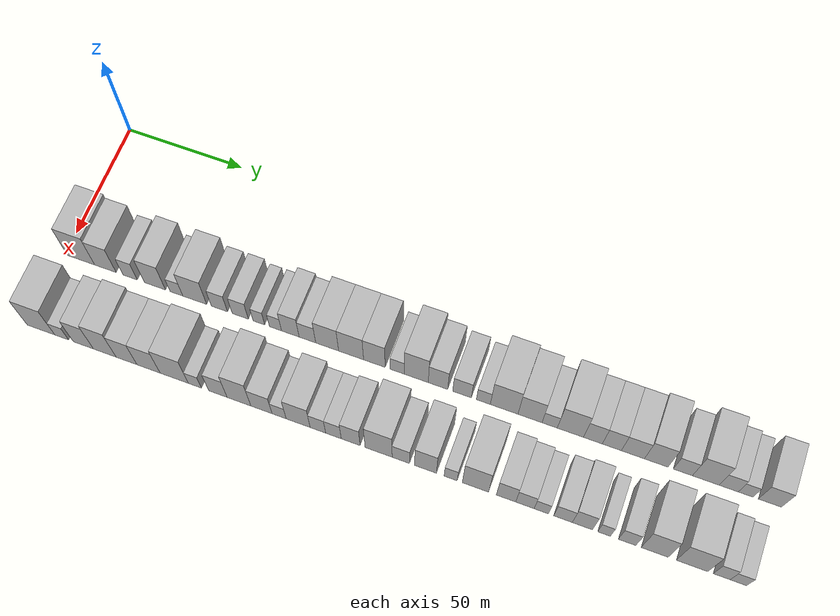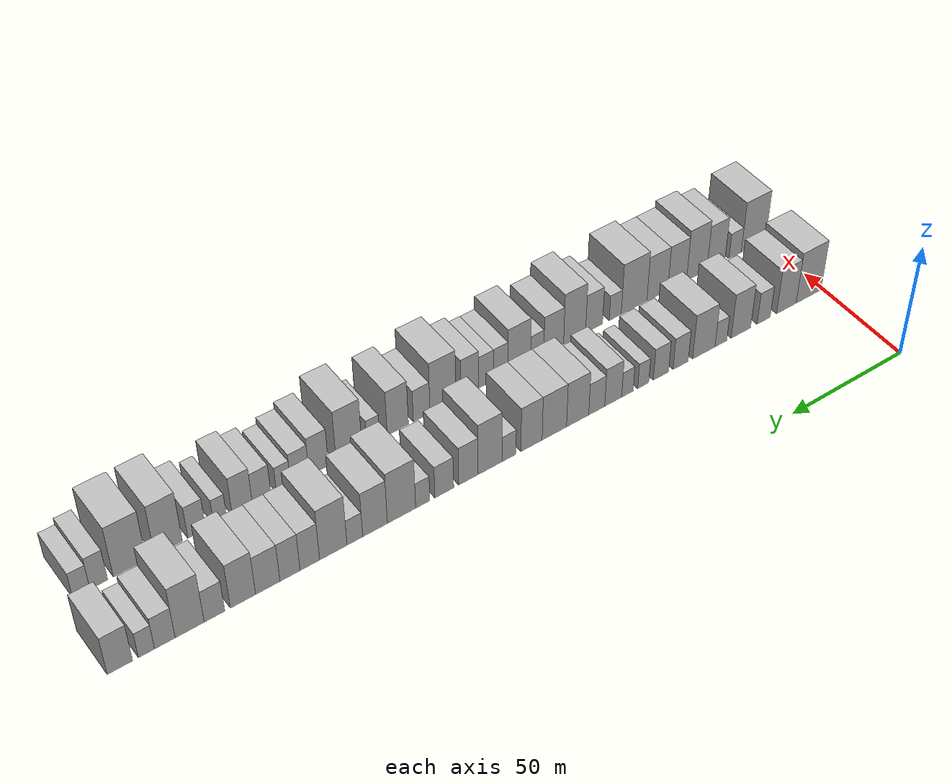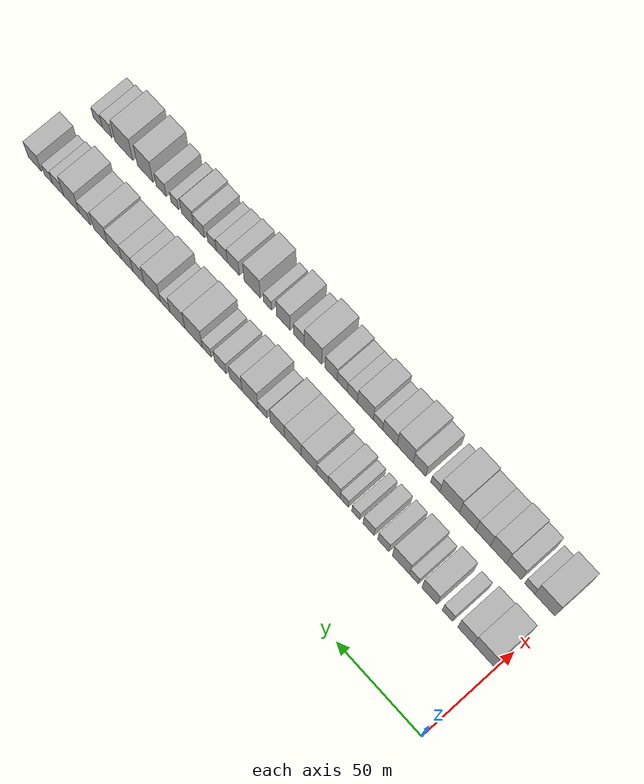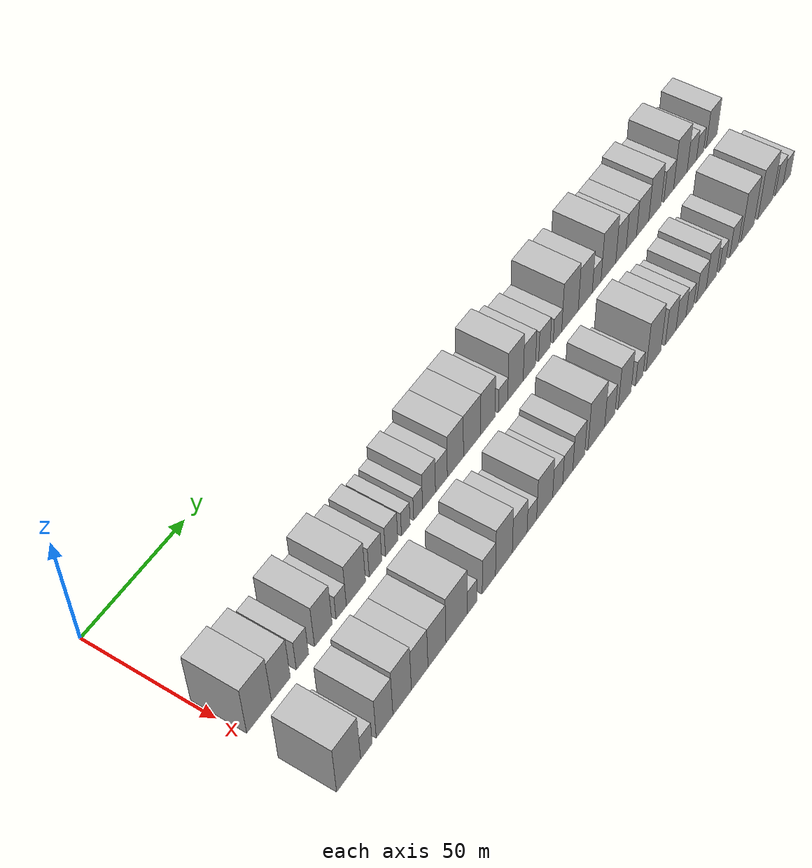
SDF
<sdf version="1.6">
 <world name="default">
  <model name="building_35">
   <static>1</static>
   <pose>50.0000 6.9286 0 0.000000 0.000000 0.000000</pose>
   <link name="link">
    <pose>0 0 12.00 0 0 0</pose>
    <collision name="collision"><geometry><box><size>20.0000 11.9607 24.0000</size></box></geometry></collision>
    <visual name="visual">
     <cast_shadows>0</cast_shadows>
     <geometry><box><size>20.0000 11.9607 24.0000</size></box></geometry>
     <material>
      <script>
       <uri>model://HANNAS_wall/materials/scripts</uri>
       <uri>model://HANNAS_wall/materials/textures</uri>
       <name>vrc/HANNAS_wall</name>
      </script>
     </material>
    </visual>
   </link>
  </model>
  <model name="building_36">
   <static>1</static>
   <pose>50.0000 17.5560 0 0.000000 0.000000 0.000000</pose>
   <link name="link">
    <pose>0 0 10.50 0 0 0</pose>
    <collision name="collision"><geometry><box><size>20.0000 9.2942 21.0000</size></box></geometry></collision>
    <visual name="visual">
     <cast_shadows>0</cast_shadows>
     <geometry><box><size>20.0000 9.2942 21.0000</size></box></geometry>
     <material>
      <script>
       <uri>model://HANNAS_wall/materials/scripts</uri>
       <uri>model://HANNAS_wall/materials/textures</uri>
       <name>vrc/HANNAS_wall</name>
      </script>
     </material>
    </visual>
   </link>
  </model>
  <model name="building_37">
   <static>1</static>
   <pose>50.0000 28.2883 0 0.000000 0.000000 0.000000</pose>
   <link name="link">
    <pose>0 0 7.50 0 0 0</pose>
    <collision name="collision"><geometry><box><size>20.0000 6.1704 15.0000</size></box></geometry></collision>
    <visual name="visual">
     <cast_shadows>0</cast_shadows>
     <geometry><box><size>20.0000 6.1704 15.0000</size></box></geometry>
     <material>
      <script>
       <uri>model://HANNAS_wall/materials/scripts</uri>
       <uri>model://HANNAS_wall/materials/textures</uri>
       <name>vrc/HANNAS_wall</name>
      </script>
     </material>
    </visual>
   </link>
  </model>
  <model name="building_38">
   <static>1</static>
   <pose>50.0000 38.9013 0 0.000000 0.000000 0.000000</pose>
   <link name="link">
    <pose>0 0 10.50 0 0 0</pose>
    <collision name="collision"><geometry><box><size>20.0000 9.0557 21.0000</size></box></geometry></collision>
    <visual name="visual">
     <cast_shadows>0</cast_shadows>
     <geometry><box><size>20.0000 9.0557 21.0000</size></box></geometry>
     <material>
      <script>
       <uri>model://HANNAS_wall/materials/scripts</uri>
       <uri>model://HANNAS_wall/materials/textures</uri>
       <name>vrc/HANNAS_wall</name>
      </script>
     </material>
    </visual>
   </link>
  </model>
  <model name="building_39">
   <static>1</static>
   <pose>50.0000 48.1322 0 0.000000 0.000000 0.000000</pose>
   <link name="link">
    <pose>0 0 6.00 0 0 0</pose>
    <collision name="collision"><geometry><box><size>20.0000 5.4062 12.0000</size></box></geometry></collision>
    <visual name="visual">
     <cast_shadows>0</cast_shadows>
     <geometry><box><size>20.0000 5.4062 12.0000</size></box></geometry>
     <material>
      <script>
       <uri>model://HANNAS_wall/materials/scripts</uri>
       <uri>model://HANNAS_wall/materials/textures</uri>
       <name>vrc/HANNAS_wall</name>
      </script>
     </material>
    </visual>
   </link>
  </model>
  <model name="building_40">
   <static>1</static>
   <pose>50.0000 55.9080 0 0.000000 0.000000 0.000000</pose>
   <link name="link">
    <pose>0 0 10.50 0 0 0</pose>
    <collision name="collision"><geometry><box><size>20.0000 10.1454 21.0000</size></box></geometry></collision>
    <visual name="visual">
     <cast_shadows>0</cast_shadows>
     <geometry><box><size>20.0000 10.1454 21.0000</size></box></geometry>
     <material>
      <script>
       <uri>model://HANNAS_wall/materials/scripts</uri>
       <uri>model://HANNAS_wall/materials/textures</uri>
       <name>vrc/HANNAS_wall</name>
      </script>
     </material>
    </visual>
   </link>
  </model>
  <model name="building_41">
   <static>1</static>
   <pose>50.0000 66.3840 0 0.000000 0.000000 0.000000</pose>
   <link name="link">
    <pose>0 0 7.50 0 0 0</pose>
    <collision name="collision"><geometry><box><size>20.0000 6.8065 15.0000</size></box></geometry></collision>
    <visual name="visual">
     <cast_shadows>0</cast_shadows>
     <geometry><box><size>20.0000 6.8065 15.0000</size></box></geometry>
     <material>
      <script>
       <uri>model://HANNAS_wall/materials/scripts</uri>
       <uri>model://HANNAS_wall/materials/textures</uri>
       <name>vrc/HANNAS_wall</name>
      </script>
     </material>
    </visual>
   </link>
  </model>
  <model name="building_42">
   <static>1</static>
   <pose>50.0000 75.1720 0 0.000000 0.000000 0.000000</pose>
   <link name="link">
    <pose>0 0 7.50 0 0 0</pose>
    <collision name="collision"><geometry><box><size>20.0000 6.7694 15.0000</size></box></geometry></collision>
    <visual name="visual">
     <cast_shadows>0</cast_shadows>
     <geometry><box><size>20.0000 6.7694 15.0000</size></box></geometry>
     <material>
      <script>
       <uri>model://HANNAS_wall/materials/scripts</uri>
       <uri>model://HANNAS_wall/materials/textures</uri>
       <name>vrc/HANNAS_wall</name>
      </script>
     </material>
    </visual>
   </link>
  </model>
  <model name="building_43">
   <static>1</static>
   <pose>50.0000 82.9790 0 0.000000 0.000000 0.000000</pose>
   <link name="link">
    <pose>0 0 6.00 0 0 0</pose>
    <collision name="collision"><geometry><box><size>20.0000 4.8446 12.0000</size></box></geometry></collision>
    <visual name="visual">
     <cast_shadows>0</cast_shadows>
     <geometry><box><size>20.0000 4.8446 12.0000</size></box></geometry>
     <material>
      <script>
       <uri>model://HANNAS_wall/materials/scripts</uri>
       <uri>model://HANNAS_wall/materials/textures</uri>
       <name>vrc/HANNAS_wall</name>
      </script>
     </material>
    </visual>
   </link>
  </model>
  <model name="building_44">
   <static>1</static>
   <pose>50.0000 89.9159 0 0.000000 0.000000 0.000000</pose>
   <link name="link">
    <pose>0 0 6.00 0 0 0</pose>
    <collision name="collision"><geometry><box><size>20.0000 5.0291 12.0000</size></box></geometry></collision>
    <visual name="visual">
     <cast_shadows>0</cast_shadows>
     <geometry><box><size>20.0000 5.0291 12.0000</size></box></geometry>
     <material>
      <script>
       <uri>model://HANNAS_wall/materials/scripts</uri>
       <uri>model://HANNAS_wall/materials/textures</uri>
       <name>vrc/HANNAS_wall</name>
      </script>
     </material>
    </visual>
   </link>
  </model>
  <model name="building_45">
   <static>1</static>
   <pose>50.0000 96.0961 0 0.000000 0.000000 0.000000</pose>
   <link name="link">
    <pose>0 0 9.00 0 0 0</pose>
    <collision name="collision"><geometry><box><size>20.0000 7.3313 18.0000</size></box></geometry></collision>
    <visual name="visual">
     <cast_shadows>0</cast_shadows>
     <geometry><box><size>20.0000 7.3313 18.0000</size></box></geometry>
     <material>
      <script>
       <uri>model://HANNAS_wall/materials/scripts</uri>
       <uri>model://HANNAS_wall/materials/textures</uri>
       <name>vrc/HANNAS_wall</name>
      </script>
     </material>
    </visual>
   </link>
  </model>
  <model name="building_46">
   <static>1</static>
   <pose>50.0000 103.1939 0 0.000000 0.000000 0.000000</pose>
   <link name="link">
    <pose>0 0 7.50 0 0 0</pose>
    <collision name="collision"><geometry><box><size>20.0000 6.8642 15.0000</size></box></geometry></collision>
    <visual name="visual">
     <cast_shadows>0</cast_shadows>
     <geometry><box><size>20.0000 6.8642 15.0000</size></box></geometry>
     <material>
      <script>
       <uri>model://HANNAS_wall/materials/scripts</uri>
       <uri>model://HANNAS_wall/materials/textures</uri>
       <name>vrc/HANNAS_wall</name>
      </script>
     </material>
    </visual>
   </link>
  </model>
  <model name="building_47">
   <static>1</static>
   <pose>50.0000 111.3410 0 0.000000 0.000000 0.000000</pose>
   <link name="link">
    <pose>0 0 10.50 0 0 0</pose>
    <collision name="collision"><geometry><box><size>20.0000 9.4302 21.0000</size></box></geometry></collision>
    <visual name="visual">
     <cast_shadows>0</cast_shadows>
     <geometry><box><size>20.0000 9.4302 21.0000</size></box></geometry>
     <material>
      <script>
       <uri>model://HANNAS_wall/materials/scripts</uri>
       <uri>model://HANNAS_wall/materials/textures</uri>
       <name>vrc/HANNAS_wall</name>
      </script>
     </material>
    </visual>
   </link>
  </model>
  <model name="building_48">
   <static>1</static>
   <pose>50.0000 121.1810 0 0.000000 0.000000 0.000000</pose>
   <link name="link">
    <pose>0 0 10.50 0 0 0</pose>
    <collision name="collision"><geometry><box><size>20.0000 10.2497 21.0000</size></box></geometry></collision>
    <visual name="visual">
     <cast_shadows>0</cast_shadows>
     <geometry><box><size>20.0000 10.2497 21.0000</size></box></geometry>
     <material>
      <script>
       <uri>model://HANNAS_wall/materials/scripts</uri>
       <uri>model://HANNAS_wall/materials/textures</uri>
       <name>vrc/HANNAS_wall</name>
      </script>
     </material>
    </visual>
   </link>
  </model>
  <model name="building_49">
   <static>1</static>
   <pose>50.0000 130.7097 0 0.000000 0.000000 0.000000</pose>
   <link name="link">
    <pose>0 0 10.50 0 0 0</pose>
    <collision name="collision"><geometry><box><size>20.0000 8.8076 21.0000</size></box></geometry></collision>
    <visual name="visual">
     <cast_shadows>0</cast_shadows>
     <geometry><box><size>20.0000 8.8076 21.0000</size></box></geometry>
     <material>
      <script>
       <uri>model://HANNAS_wall/materials/scripts</uri>
       <uri>model://HANNAS_wall/materials/textures</uri>
       <name>vrc/HANNAS_wall</name>
      </script>
     </material>
    </visual>
   </link>
  </model>
  <model name="building_50">
   <static>1</static>
   <pose>50.0000 139.9917 0 0.000000 0.000000 0.000000</pose>
   <link name="link">
    <pose>0 0 6.00 0 0 0</pose>
    <collision name="collision"><geometry><box><size>20.0000 5.7565 12.0000</size></box></geometry></collision>
    <visual name="visual">
     <cast_shadows>0</cast_shadows>
     <geometry><box><size>20.0000 5.7565 12.0000</size></box></geometry>
     <material>
      <script>
       <uri>model://HANNAS_wall/materials/scripts</uri>
       <uri>model://HANNAS_wall/materials/textures</uri>
       <name>vrc/HANNAS_wall</name>
      </script>
     </material>
    </visual>
   </link>
  </model>
  <model name="building_51">
   <static>1</static>
   <pose>50.0000 147.7186 0 0.000000 0.000000 0.000000</pose>
   <link name="link">
    <pose>0 0 12.00 0 0 0</pose>
    <collision name="collision"><geometry><box><size>20.0000 9.6972 24.0000</size></box></geometry></collision>
    <visual name="visual">
     <cast_shadows>0</cast_shadows>
     <geometry><box><size>20.0000 9.6972 24.0000</size></box></geometry>
     <material>
      <script>
       <uri>model://HANNAS_wall/materials/scripts</uri>
       <uri>model://HANNAS_wall/materials/textures</uri>
       <name>vrc/HANNAS_wall</name>
      </script>
     </material>
    </visual>
   </link>
  </model>
  <model name="building_52">
   <static>1</static>
   <pose>50.0000 156.4723 0 0.000000 0.000000 0.000000</pose>
   <link name="link">
    <pose>0 0 9.00 0 0 0</pose>
    <collision name="collision"><geometry><box><size>20.0000 7.8102 18.0000</size></box></geometry></collision>
    <visual name="visual">
     <cast_shadows>0</cast_shadows>
     <geometry><box><size>20.0000 7.8102 18.0000</size></box></geometry>
     <material>
      <script>
       <uri>model://HANNAS_wall/materials/scripts</uri>
       <uri>model://HANNAS_wall/materials/textures</uri>
       <name>vrc/HANNAS_wall</name>
      </script>
     </material>
    </visual>
   </link>
  </model>
  <model name="building_53">
   <static>1</static>
   <pose>50.0000 166.1110 0 0.000000 0.000000 0.000000</pose>
   <link name="link">
    <pose>0 0 7.50 0 0 0</pose>
    <collision name="collision"><geometry><box><size>20.0000 7.4673 15.0000</size></box></geometry></collision>
    <visual name="visual">
     <cast_shadows>0</cast_shadows>
     <geometry><box><size>20.0000 7.4673 15.0000</size></box></geometry>
     <material>
      <script>
       <uri>model://HANNAS_wall/materials/scripts</uri>
       <uri>model://HANNAS_wall/materials/textures</uri>
       <name>vrc/HANNAS_wall</name>
      </script>
     </material>
    </visual>
   </link>
  </model>
  <model name="building_54">
   <static>1</static>
   <pose>50.0000 174.6179 0 0.000000 0.000000 0.000000</pose>
   <link name="link">
    <pose>0 0 6.00 0 0 0</pose>
    <collision name="collision"><geometry><box><size>20.0000 5.5465 12.0000</size></box></geometry></collision>
    <visual name="visual">
     <cast_shadows>0</cast_shadows>
     <geometry><box><size>20.0000 5.5465 12.0000</size></box></geometry>
     <material>
      <script>
       <uri>model://HANNAS_wall/materials/scripts</uri>
       <uri>model://HANNAS_wall/materials/textures</uri>
       <name>vrc/HANNAS_wall</name>
      </script>
     </material>
    </visual>
   </link>
  </model>
  <model name="building_55">
   <static>1</static>
   <pose>50.0000 182.8746 0 0.000000 0.000000 0.000000</pose>
   <link name="link">
    <pose>0 0 12.00 0 0 0</pose>
    <collision name="collision"><geometry><box><size>20.0000 10.9668 24.0000</size></box></geometry></collision>
    <visual name="visual">
     <cast_shadows>0</cast_shadows>
     <geometry><box><size>20.0000 10.9668 24.0000</size></box></geometry>
     <material>
      <script>
       <uri>model://HANNAS_wall/materials/scripts</uri>
       <uri>model://HANNAS_wall/materials/textures</uri>
       <name>vrc/HANNAS_wall</name>
      </script>
     </material>
    </visual>
   </link>
  </model>
  <model name="building_56">
   <static>1</static>
   <pose>50.0000 193.1069 0 0.000000 0.000000 0.000000</pose>
   <link name="link">
    <pose>0 0 10.50 0 0 0</pose>
    <collision name="collision"><geometry><box><size>20.0000 9.4979 21.0000</size></box></geometry></collision>
    <visual name="visual">
     <cast_shadows>0</cast_shadows>
     <geometry><box><size>20.0000 9.4979 21.0000</size></box></geometry>
     <material>
      <script>
       <uri>model://HANNAS_wall/materials/scripts</uri>
       <uri>model://HANNAS_wall/materials/textures</uri>
       <name>vrc/HANNAS_wall</name>
      </script>
     </material>
    </visual>
   </link>
  </model>
  <model name="building_57">
   <static>1</static>
   <pose>50.0000 200.8428 0 0.000000 0.000000 0.000000</pose>
   <link name="link">
    <pose>0 0 6.00 0 0 0</pose>
    <collision name="collision"><geometry><box><size>20.0000 5.9738 12.0000</size></box></geometry></collision>
    <visual name="visual">
     <cast_shadows>0</cast_shadows>
     <geometry><box><size>20.0000 5.9738 12.0000</size></box></geometry>
     <material>
      <script>
       <uri>model://HANNAS_wall/materials/scripts</uri>
       <uri>model://HANNAS_wall/materials/textures</uri>
       <name>vrc/HANNAS_wall</name>
      </script>
     </material>
    </visual>
   </link>
  </model>
  <model name="building_58">
   <static>1</static>
   <pose>50.0000 208.9746 0 0.000000 0.000000 0.000000</pose>
   <link name="link">
    <pose>0 0 12.00 0 0 0</pose>
    <collision name="collision"><geometry><box><size>20.0000 10.2897 24.0000</size></box></geometry></collision>
    <visual name="visual">
     <cast_shadows>0</cast_shadows>
     <geometry><box><size>20.0000 10.2897 24.0000</size></box></geometry>
     <material>
      <script>
       <uri>model://HANNAS_wall/materials/scripts</uri>
       <uri>model://HANNAS_wall/materials/textures</uri>
       <name>vrc/HANNAS_wall</name>
      </script>
     </material>
    </visual>
   </link>
  </model>
  <model name="building_59">
   <static>1</static>
   <pose>50.0000 217.7612 0 0.000000 0.000000 0.000000</pose>
   <link name="link">
    <pose>0 0 9.00 0 0 0</pose>
    <collision name="collision"><geometry><box><size>20.0000 7.2835 18.0000</size></box></geometry></collision>
    <visual name="visual">
     <cast_shadows>0</cast_shadows>
     <geometry><box><size>20.0000 7.2835 18.0000</size></box></geometry>
     <material>
      <script>
       <uri>model://HANNAS_wall/materials/scripts</uri>
       <uri>model://HANNAS_wall/materials/textures</uri>
       <name>vrc/HANNAS_wall</name>
      </script>
     </material>
    </visual>
   </link>
  </model>
  <model name="building_60">
   <static>1</static>
   <pose>50.0000 225.0899 0 0.000000 0.000000 0.000000</pose>
   <link name="link">
    <pose>0 0 9.00 0 0 0</pose>
    <collision name="collision"><geometry><box><size>20.0000 7.3739 18.0000</size></box></geometry></collision>
    <visual name="visual">
     <cast_shadows>0</cast_shadows>
     <geometry><box><size>20.0000 7.3739 18.0000</size></box></geometry>
     <material>
      <script>
       <uri>model://HANNAS_wall/materials/scripts</uri>
       <uri>model://HANNAS_wall/materials/textures</uri>
       <name>vrc/HANNAS_wall</name>
      </script>
     </material>
    </visual>
   </link>
  </model>
  <model name="building_61">
   <static>1</static>
   <pose>50.0000 233.2249 0 0.000000 0.000000 0.000000</pose>
   <link name="link">
    <pose>0 0 9.00 0 0 0</pose>
    <collision name="collision"><geometry><box><size>20.0000 8.8960 18.0000</size></box></geometry></collision>
    <visual name="visual">
     <cast_shadows>0</cast_shadows>
     <geometry><box><size>20.0000 8.8960 18.0000</size></box></geometry>
     <material>
      <script>
       <uri>model://HANNAS_wall/materials/scripts</uri>
       <uri>model://HANNAS_wall/materials/textures</uri>
       <name>vrc/HANNAS_wall</name>
      </script>
     </material>
    </visual>
   </link>
  </model>
  <model name="building_62">
   <static>1</static>
   <pose>50.0000 242.2076 0 0.000000 0.000000 0.000000</pose>
   <link name="link">
    <pose>0 0 10.50 0 0 0</pose>
    <collision name="collision"><geometry><box><size>20.0000 9.0694 21.0000</size></box></geometry></collision>
    <visual name="visual">
     <cast_shadows>0</cast_shadows>
     <geometry><box><size>20.0000 9.0694 21.0000</size></box></geometry>
     <material>
      <script>
       <uri>model://HANNAS_wall/materials/scripts</uri>
       <uri>model://HANNAS_wall/materials/textures</uri>
       <name>vrc/HANNAS_wall</name>
      </script>
     </material>
    </visual>
   </link>
  </model>
  <model name="building_63">
   <static>1</static>
   <pose>50.0000 252.3974 0 0.000000 0.000000 0.000000</pose>
   <link name="link">
    <pose>0 0 7.50 0 0 0</pose>
    <collision name="collision"><geometry><box><size>20.0000 7.3102 15.0000</size></box></geometry></collision>
    <visual name="visual">
     <cast_shadows>0</cast_shadows>
     <geometry><box><size>20.0000 7.3102 15.0000</size></box></geometry>
     <material>
      <script>
       <uri>model://HANNAS_wall/materials/scripts</uri>
       <uri>model://HANNAS_wall/materials/textures</uri>
       <name>vrc/HANNAS_wall</name>
      </script>
     </material>
    </visual>
   </link>
  </model>
  <model name="building_64">
   <static>1</static>
   <pose>50.0000 261.1480 0 0.000000 0.000000 0.000000</pose>
   <link name="link">
    <pose>0 0 12.00 0 0 0</pose>
    <collision name="collision"><geometry><box><size>20.0000 10.1910 24.0000</size></box></geometry></collision>
    <visual name="visual">
     <cast_shadows>0</cast_shadows>
     <geometry><box><size>20.0000 10.1910 24.0000</size></box></geometry>
     <material>
      <script>
       <uri>model://HANNAS_wall/materials/scripts</uri>
       <uri>model://HANNAS_wall/materials/textures</uri>
       <name>vrc/HANNAS_wall</name>
      </script>
     </material>
    </visual>
   </link>
  </model>
  <model name="building_65">
   <static>1</static>
   <pose>50.0000 269.8352 0 0.000000 0.000000 0.000000</pose>
   <link name="link">
    <pose>0 0 7.50 0 0 0</pose>
    <collision name="collision"><geometry><box><size>20.0000 7.1834 15.0000</size></box></geometry></collision>
    <visual name="visual">
     <cast_shadows>0</cast_shadows>
     <geometry><box><size>20.0000 7.1834 15.0000</size></box></geometry>
     <material>
      <script>
       <uri>model://HANNAS_wall/materials/scripts</uri>
       <uri>model://HANNAS_wall/materials/textures</uri>
       <name>vrc/HANNAS_wall</name>
      </script>
     </material>
    </visual>
   </link>
  </model>
  <model name="building_66">
   <static>1</static>
   <pose>50.0000 276.1964 0 0.000000 0.000000 0.000000</pose>
   <link name="link">
    <pose>0 0 6.00 0 0 0</pose>
    <collision name="collision"><geometry><box><size>20.0000 5.5391 12.0000</size></box></geometry></collision>
    <visual name="visual">
     <cast_shadows>0</cast_shadows>
     <geometry><box><size>20.0000 5.5391 12.0000</size></box></geometry>
     <material>
      <script>
       <uri>model://HANNAS_wall/materials/scripts</uri>
       <uri>model://HANNAS_wall/materials/textures</uri>
       <name>vrc/HANNAS_wall</name>
      </script>
     </material>
    </visual>
   </link>
  </model>
  <model name="building_67">
   <static>1</static>
   <pose>50.0000 285.2820 0 0.000000 0.000000 0.000000</pose>
   <link name="link">
    <pose>0 0 9.00 0 0 0</pose>
    <collision name="collision"><geometry><box><size>20.0000 8.6320 18.0000</size></box></geometry></collision>
    <visual name="visual">
     <cast_shadows>0</cast_shadows>
     <geometry><box><size>20.0000 8.6320 18.0000</size></box></geometry>
     <material>
      <script>
       <uri>model://HANNAS_wall/materials/scripts</uri>
       <uri>model://HANNAS_wall/materials/textures</uri>
       <name>vrc/HANNAS_wall</name>
      </script>
     </material>
    </visual>
   </link>
  </model>
  <model name="building_98">
   <static>1</static>
   <pose>82.0000 5.4681 0 0.000000 0.000000 0.000000</pose>
   <link name="link">
    <pose>0 0 12.00 0 0 0</pose>
    <collision name="collision"><geometry><box><size>20.0000 11.8396 24.0000</size></box></geometry></collision>
    <visual name="visual">
     <cast_shadows>0</cast_shadows>
     <geometry><box><size>20.0000 11.8396 24.0000</size></box></geometry>
     <material>
      <script>
       <uri>model://HANNAS_wall/materials/scripts</uri>
       <uri>model://HANNAS_wall/materials/textures</uri>
       <name>vrc/HANNAS_wall</name>
      </script>
     </material>
    </visual>
   </link>
  </model>
  <model name="building_99">
   <static>1</static>
   <pose>82.0000 14.3077 0 0.000000 0.000000 0.000000</pose>
   <link name="link">
    <pose>0 0 6.00 0 0 0</pose>
    <collision name="collision"><geometry><box><size>20.0000 5.8397 12.0000</size></box></geometry></collision>
    <visual name="visual">
     <cast_shadows>0</cast_shadows>
     <geometry><box><size>20.0000 5.8397 12.0000</size></box></geometry>
     <material>
      <script>
       <uri>model://HANNAS_wall/materials/scripts</uri>
       <uri>model://HANNAS_wall/materials/textures</uri>
       <name>vrc/HANNAS_wall</name>
      </script>
     </material>
    </visual>
   </link>
  </model>
  <model name="building_100">
   <static>1</static>
   <pose>82.0000 23.4973 0 0.000000 0.000000 0.000000</pose>
   <link name="link">
    <pose>0 0 10.50 0 0 0</pose>
    <collision name="collision"><geometry><box><size>20.0000 8.5394 21.0000</size></box></geometry></collision>
    <visual name="visual">
     <cast_shadows>0</cast_shadows>
     <geometry><box><size>20.0000 8.5394 21.0000</size></box></geometry>
     <material>
      <script>
       <uri>model://HANNAS_wall/materials/scripts</uri>
       <uri>model://HANNAS_wall/materials/textures</uri>
       <name>vrc/HANNAS_wall</name>
      </script>
     </material>
    </visual>
   </link>
  </model>
  <model name="building_101">
   <static>1</static>
   <pose>82.0000 32.5749 0 0.000000 0.000000 0.000000</pose>
   <link name="link">
    <pose>0 0 12.00 0 0 0</pose>
    <collision name="collision"><geometry><box><size>20.0000 9.6159 24.0000</size></box></geometry></collision>
    <visual name="visual">
     <cast_shadows>0</cast_shadows>
     <geometry><box><size>20.0000 9.6159 24.0000</size></box></geometry>
     <material>
      <script>
       <uri>model://HANNAS_wall/materials/scripts</uri>
       <uri>model://HANNAS_wall/materials/textures</uri>
       <name>vrc/HANNAS_wall</name>
      </script>
     </material>
    </visual>
   </link>
  </model>
  <model name="building_102">
   <static>1</static>
   <pose>82.0000 41.7651 0 0.000000 0.000000 0.000000</pose>
   <link name="link">
    <pose>0 0 10.50 0 0 0</pose>
    <collision name="collision"><geometry><box><size>20.0000 8.7645 21.0000</size></box></geometry></collision>
    <visual name="visual">
     <cast_shadows>0</cast_shadows>
     <geometry><box><size>20.0000 8.7645 21.0000</size></box></geometry>
     <material>
      <script>
       <uri>model://HANNAS_wall/materials/scripts</uri>
       <uri>model://HANNAS_wall/materials/textures</uri>
       <name>vrc/HANNAS_wall</name>
      </script>
     </material>
    </visual>
   </link>
  </model>
  <model name="building_103">
   <static>1</static>
   <pose>82.0000 50.9737 0 0.000000 0.000000 0.000000</pose>
   <link name="link">
    <pose>0 0 10.50 0 0 0</pose>
    <collision name="collision"><geometry><box><size>20.0000 9.6528 21.0000</size></box></geometry></collision>
    <visual name="visual">
     <cast_shadows>0</cast_shadows>
     <geometry><box><size>20.0000 9.6528 21.0000</size></box></geometry>
     <material>
      <script>
       <uri>model://HANNAS_wall/materials/scripts</uri>
       <uri>model://HANNAS_wall/materials/textures</uri>
       <name>vrc/HANNAS_wall</name>
      </script>
     </material>
    </visual>
   </link>
  </model>
  <model name="building_104">
   <static>1</static>
   <pose>82.0000 61.6570 0 0.000000 0.000000 0.000000</pose>
   <link name="link">
    <pose>0 0 12.00 0 0 0</pose>
    <collision name="collision"><geometry><box><size>20.0000 11.7137 24.0000</size></box></geometry></collision>
    <visual name="visual">
     <cast_shadows>0</cast_shadows>
     <geometry><box><size>20.0000 11.7137 24.0000</size></box></geometry>
     <material>
      <script>
       <uri>model://HANNAS_wall/materials/scripts</uri>
       <uri>model://HANNAS_wall/materials/textures</uri>
       <name>vrc/HANNAS_wall</name>
      </script>
     </material>
    </visual>
   </link>
  </model>
  <model name="building_105">
   <static>1</static>
   <pose>82.0000 70.2260 0 0.000000 0.000000 0.000000</pose>
   <link name="link">
    <pose>0 0 6.00 0 0 0</pose>
    <collision name="collision"><geometry><box><size>20.0000 5.4243 12.0000</size></box></geometry></collision>
    <visual name="visual">
     <cast_shadows>0</cast_shadows>
     <geometry><box><size>20.0000 5.4243 12.0000</size></box></geometry>
     <material>
      <script>
       <uri>model://HANNAS_wall/materials/scripts</uri>
       <uri>model://HANNAS_wall/materials/textures</uri>
       <name>vrc/HANNAS_wall</name>
      </script>
     </material>
    </visual>
   </link>
  </model>
  <model name="building_106">
   <static>1</static>
   <pose>82.0000 79.7173 0 0.000000 0.000000 0.000000</pose>
   <link name="link">
    <pose>0 0 9.00 0 0 0</pose>
    <collision name="collision"><geometry><box><size>20.0000 7.5585 18.0000</size></box></geometry></collision>
    <visual name="visual">
     <cast_shadows>0</cast_shadows>
     <geometry><box><size>20.0000 7.5585 18.0000</size></box></geometry>
     <material>
      <script>
       <uri>model://HANNAS_wall/materials/scripts</uri>
       <uri>model://HANNAS_wall/materials/textures</uri>
       <name>vrc/HANNAS_wall</name>
      </script>
     </material>
    </visual>
   </link>
  </model>
  <model name="building_107">
   <static>1</static>
   <pose>82.0000 88.3652 0 0.000000 0.000000 0.000000</pose>
   <link name="link">
    <pose>0 0 12.00 0 0 0</pose>
    <collision name="collision"><geometry><box><size>20.0000 9.7372 24.0000</size></box></geometry></collision>
    <visual name="visual">
     <cast_shadows>0</cast_shadows>
     <geometry><box><size>20.0000 9.7372 24.0000</size></box></geometry>
     <material>
      <script>
       <uri>model://HANNAS_wall/materials/scripts</uri>
       <uri>model://HANNAS_wall/materials/textures</uri>
       <name>vrc/HANNAS_wall</name>
      </script>
     </material>
    </visual>
   </link>
  </model>
  <model name="building_108">
   <static>1</static>
   <pose>82.0000 97.5658 0 0.000000 0.000000 0.000000</pose>
   <link name="link">
    <pose>0 0 9.00 0 0 0</pose>
    <collision name="collision"><geometry><box><size>20.0000 8.6640 18.0000</size></box></geometry></collision>
    <visual name="visual">
     <cast_shadows>0</cast_shadows>
     <geometry><box><size>20.0000 8.6640 18.0000</size></box></geometry>
     <material>
      <script>
       <uri>model://HANNAS_wall/materials/scripts</uri>
       <uri>model://HANNAS_wall/materials/textures</uri>
       <name>vrc/HANNAS_wall</name>
      </script>
     </material>
    </visual>
   </link>
  </model>
  <model name="building_109">
   <static>1</static>
   <pose>82.0000 104.7504 0 0.000000 0.000000 0.000000</pose>
   <link name="link">
    <pose>0 0 6.00 0 0 0</pose>
    <collision name="collision"><geometry><box><size>20.0000 5.7053 12.0000</size></box></geometry></collision>
    <visual name="visual">
     <cast_shadows>0</cast_shadows>
     <geometry><box><size>20.0000 5.7053 12.0000</size></box></geometry>
     <material>
      <script>
       <uri>model://HANNAS_wall/materials/scripts</uri>
       <uri>model://HANNAS_wall/materials/textures</uri>
       <name>vrc/HANNAS_wall</name>
      </script>
     </material>
    </visual>
   </link>
  </model>
  <model name="building_110">
   <static>1</static>
   <pose>82.0000 112.4497 0 0.000000 0.000000 0.000000</pose>
   <link name="link">
    <pose>0 0 10.50 0 0 0</pose>
    <collision name="collision"><geometry><box><size>20.0000 9.6932 21.0000</size></box></geometry></collision>
    <visual name="visual">
     <cast_shadows>0</cast_shadows>
     <geometry><box><size>20.0000 9.6932 21.0000</size></box></geometry>
     <material>
      <script>
       <uri>model://HANNAS_wall/materials/scripts</uri>
       <uri>model://HANNAS_wall/materials/textures</uri>
       <name>vrc/HANNAS_wall</name>
      </script>
     </material>
    </visual>
   </link>
  </model>
  <model name="building_111">
   <static>1</static>
   <pose>82.0000 120.3933 0 0.000000 0.000000 0.000000</pose>
   <link name="link">
    <pose>0 0 7.50 0 0 0</pose>
    <collision name="collision"><geometry><box><size>20.0000 6.1940 15.0000</size></box></geometry></collision>
    <visual name="visual">
     <cast_shadows>0</cast_shadows>
     <geometry><box><size>20.0000 6.1940 15.0000</size></box></geometry>
     <material>
      <script>
       <uri>model://HANNAS_wall/materials/scripts</uri>
       <uri>model://HANNAS_wall/materials/textures</uri>
       <name>vrc/HANNAS_wall</name>
      </script>
     </material>
    </visual>
   </link>
  </model>
  <model name="building_112">
   <static>1</static>
   <pose>82.0000 126.6226 0 0.000000 0.000000 0.000000</pose>
   <link name="link">
    <pose>0 0 7.50 0 0 0</pose>
    <collision name="collision"><geometry><box><size>20.0000 6.2647 15.0000</size></box></geometry></collision>
    <visual name="visual">
     <cast_shadows>0</cast_shadows>
     <geometry><box><size>20.0000 6.2647 15.0000</size></box></geometry>
     <material>
      <script>
       <uri>model://HANNAS_wall/materials/scripts</uri>
       <uri>model://HANNAS_wall/materials/textures</uri>
       <name>vrc/HANNAS_wall</name>
      </script>
     </material>
    </visual>
   </link>
  </model>
  <model name="building_113">
   <static>1</static>
   <pose>82.0000 133.5045 0 0.000000 0.000000 0.000000</pose>
   <link name="link">
    <pose>0 0 9.00 0 0 0</pose>
    <collision name="collision"><geometry><box><size>20.0000 7.4992 18.0000</size></box></geometry></collision>
    <visual name="visual">
     <cast_shadows>0</cast_shadows>
     <geometry><box><size>20.0000 7.4992 18.0000</size></box></geometry>
     <material>
      <script>
       <uri>model://HANNAS_wall/materials/scripts</uri>
       <uri>model://HANNAS_wall/materials/textures</uri>
       <name>vrc/HANNAS_wall</name>
      </script>
     </material>
    </visual>
   </link>
  </model>
  <model name="building_114">
   <static>1</static>
   <pose>82.0000 144.6176 0 0.000000 0.000000 0.000000</pose>
   <link name="link">
    <pose>0 0 12.00 0 0 0</pose>
    <collision name="collision"><geometry><box><size>20.0000 10.7270 24.0000</size></box></geometry></collision>
    <visual name="visual">
     <cast_shadows>0</cast_shadows>
     <geometry><box><size>20.0000 10.7270 24.0000</size></box></geometry>
     <material>
      <script>
       <uri>model://HANNAS_wall/materials/scripts</uri>
       <uri>model://HANNAS_wall/materials/textures</uri>
       <name>vrc/HANNAS_wall</name>
      </script>
     </material>
    </visual>
   </link>
  </model>
  <model name="building_115">
   <static>1</static>
   <pose>82.0000 153.3923 0 0.000000 0.000000 0.000000</pose>
   <link name="link">
    <pose>0 0 7.50 0 0 0</pose>
    <collision name="collision"><geometry><box><size>20.0000 6.8223 15.0000</size></box></geometry></collision>
    <visual name="visual">
     <cast_shadows>0</cast_shadows>
     <geometry><box><size>20.0000 6.8223 15.0000</size></box></geometry>
     <material>
      <script>
       <uri>model://HANNAS_wall/materials/scripts</uri>
       <uri>model://HANNAS_wall/materials/textures</uri>
       <name>vrc/HANNAS_wall</name>
      </script>
     </material>
    </visual>
   </link>
  </model>
  <model name="building_116">
   <static>1</static>
   <pose>82.0000 163.0997 0 0.000000 0.000000 0.000000</pose>
   <link name="link">
    <pose>0 0 10.50 0 0 0</pose>
    <collision name="collision"><geometry><box><size>20.0000 8.5926 21.0000</size></box></geometry></collision>
    <visual name="visual">
     <cast_shadows>0</cast_shadows>
     <geometry><box><size>20.0000 8.5926 21.0000</size></box></geometry>
     <material>
      <script>
       <uri>model://HANNAS_wall/materials/scripts</uri>
       <uri>model://HANNAS_wall/materials/textures</uri>
       <name>vrc/HANNAS_wall</name>
      </script>
     </material>
    </visual>
   </link>
  </model>
  <model name="building_117">
   <static>1</static>
   <pose>82.0000 172.9323 0 0.000000 0.000000 0.000000</pose>
   <link name="link">
    <pose>0 0 6.00 0 0 0</pose>
    <collision name="collision"><geometry><box><size>20.0000 5.0725 12.0000</size></box></geometry></collision>
    <visual name="visual">
     <cast_shadows>0</cast_shadows>
     <geometry><box><size>20.0000 5.0725 12.0000</size></box></geometry>
     <material>
      <script>
       <uri>model://HANNAS_wall/materials/scripts</uri>
       <uri>model://HANNAS_wall/materials/textures</uri>
       <name>vrc/HANNAS_wall</name>
      </script>
     </material>
    </visual>
   </link>
  </model>
  <model name="building_118">
   <static>1</static>
   <pose>82.0000 182.5699 0 0.000000 0.000000 0.000000</pose>
   <link name="link">
    <pose>0 0 12.00 0 0 0</pose>
    <collision name="collision"><geometry><box><size>20.0000 10.2026 24.0000</size></box></geometry></collision>
    <visual name="visual">
     <cast_shadows>0</cast_shadows>
     <geometry><box><size>20.0000 10.2026 24.0000</size></box></geometry>
     <material>
      <script>
       <uri>model://HANNAS_wall/materials/scripts</uri>
       <uri>model://HANNAS_wall/materials/textures</uri>
       <name>vrc/HANNAS_wall</name>
      </script>
     </material>
    </visual>
   </link>
  </model>
  <model name="building_119">
   <static>1</static>
   <pose>82.0000 194.4280 0 0.000000 0.000000 0.000000</pose>
   <link name="link">
    <pose>0 0 9.00 0 0 0</pose>
    <collision name="collision"><geometry><box><size>20.0000 7.5136 18.0000</size></box></geometry></collision>
    <visual name="visual">
     <cast_shadows>0</cast_shadows>
     <geometry><box><size>20.0000 7.5136 18.0000</size></box></geometry>
     <material>
      <script>
       <uri>model://HANNAS_wall/materials/scripts</uri>
       <uri>model://HANNAS_wall/materials/textures</uri>
       <name>vrc/HANNAS_wall</name>
      </script>
     </material>
    </visual>
   </link>
  </model>
  <model name="building_120">
   <static>1</static>
   <pose>82.0000 201.7308 0 0.000000 0.000000 0.000000</pose>
   <link name="link">
    <pose>0 0 7.50 0 0 0</pose>
    <collision name="collision"><geometry><box><size>20.0000 7.0920 15.0000</size></box></geometry></collision>
    <visual name="visual">
     <cast_shadows>0</cast_shadows>
     <geometry><box><size>20.0000 7.0920 15.0000</size></box></geometry>
     <material>
      <script>
       <uri>model://HANNAS_wall/materials/scripts</uri>
       <uri>model://HANNAS_wall/materials/textures</uri>
       <name>vrc/HANNAS_wall</name>
      </script>
     </material>
    </visual>
   </link>
  </model>
  <model name="building_121">
   <static>1</static>
   <pose>82.0000 208.0179 0 0.000000 0.000000 0.000000</pose>
   <link name="link">
    <pose>0 0 6.00 0 0 0</pose>
    <collision name="collision"><geometry><box><size>20.0000 5.4821 12.0000</size></box></geometry></collision>
    <visual name="visual">
     <cast_shadows>0</cast_shadows>
     <geometry><box><size>20.0000 5.4821 12.0000</size></box></geometry>
     <material>
      <script>
       <uri>model://HANNAS_wall/materials/scripts</uri>
       <uri>model://HANNAS_wall/materials/textures</uri>
       <name>vrc/HANNAS_wall</name>
      </script>
     </material>
    </visual>
   </link>
  </model>
  <model name="building_122">
   <static>1</static>
   <pose>82.0000 216.2945 0 0.000000 0.000000 0.000000</pose>
   <link name="link">
    <pose>0 0 7.50 0 0 0</pose>
    <collision name="collision"><geometry><box><size>20.0000 7.0711 15.0000</size></box></geometry></collision>
    <visual name="visual">
     <cast_shadows>0</cast_shadows>
     <geometry><box><size>20.0000 7.0711 15.0000</size></box></geometry>
     <material>
      <script>
       <uri>model://HANNAS_wall/materials/scripts</uri>
       <uri>model://HANNAS_wall/materials/textures</uri>
       <name>vrc/HANNAS_wall</name>
      </script>
     </material>
    </visual>
   </link>
  </model>
  <model name="building_123">
   <static>1</static>
   <pose>82.0000 223.6341 0 0.000000 0.000000 0.000000</pose>
   <link name="link">
    <pose>0 0 9.00 0 0 0</pose>
    <collision name="collision"><geometry><box><size>20.0000 7.6082 18.0000</size></box></geometry></collision>
    <visual name="visual">
     <cast_shadows>0</cast_shadows>
     <geometry><box><size>20.0000 7.6082 18.0000</size></box></geometry>
     <material>
      <script>
       <uri>model://HANNAS_wall/materials/scripts</uri>
       <uri>model://HANNAS_wall/materials/textures</uri>
       <name>vrc/HANNAS_wall</name>
      </script>
     </material>
    </visual>
   </link>
  </model>
  <model name="building_124">
   <static>1</static>
   <pose>82.0000 231.8425 0 0.000000 0.000000 0.000000</pose>
   <link name="link">
    <pose>0 0 6.00 0 0 0</pose>
    <collision name="collision"><geometry><box><size>20.0000 4.8086 12.0000</size></box></geometry></collision>
    <visual name="visual">
     <cast_shadows>0</cast_shadows>
     <geometry><box><size>20.0000 4.8086 12.0000</size></box></geometry>
     <material>
      <script>
       <uri>model://HANNAS_wall/materials/scripts</uri>
       <uri>model://HANNAS_wall/materials/textures</uri>
       <name>vrc/HANNAS_wall</name>
      </script>
     </material>
    </visual>
   </link>
  </model>
  <model name="building_125">
   <static>1</static>
   <pose>82.0000 240.5298 0 0.000000 0.000000 0.000000</pose>
   <link name="link">
    <pose>0 0 7.50 0 0 0</pose>
    <collision name="collision"><geometry><box><size>20.0000 6.5658 15.0000</size></box></geometry></collision>
    <visual name="visual">
     <cast_shadows>0</cast_shadows>
     <geometry><box><size>20.0000 6.5658 15.0000</size></box></geometry>
     <material>
      <script>
       <uri>model://HANNAS_wall/materials/scripts</uri>
       <uri>model://HANNAS_wall/materials/textures</uri>
       <name>vrc/HANNAS_wall</name>
      </script>
     </material>
    </visual>
   </link>
  </model>
  <model name="building_126">
   <static>1</static>
   <pose>82.0000 250.8685 0 0.000000 0.000000 0.000000</pose>
   <link name="link">
    <pose>0 0 12.00 0 0 0</pose>
    <collision name="collision"><geometry><box><size>20.0000 10.1118 24.0000</size></box></geometry></collision>
    <visual name="visual">
     <cast_shadows>0</cast_shadows>
     <geometry><box><size>20.0000 10.1118 24.0000</size></box></geometry>
     <material>
      <script>
       <uri>model://HANNAS_wall/materials/scripts</uri>
       <uri>model://HANNAS_wall/materials/textures</uri>
       <name>vrc/HANNAS_wall</name>
      </script>
     </material>
    </visual>
   </link>
  </model>
  <model name="building_127">
   <static>1</static>
   <pose>82.0000 264.7622 0 0.000000 0.000000 0.000000</pose>
   <link name="link">
    <pose>0 0 12.00 0 0 0</pose>
    <collision name="collision"><geometry><box><size>20.0000 11.6756 24.0000</size></box></geometry></collision>
    <visual name="visual">
     <cast_shadows>0</cast_shadows>
     <geometry><box><size>20.0000 11.6756 24.0000</size></box></geometry>
     <material>
      <script>
       <uri>model://HANNAS_wall/materials/scripts</uri>
       <uri>model://HANNAS_wall/materials/textures</uri>
       <name>vrc/HANNAS_wall</name>
      </script>
     </material>
    </visual>
   </link>
  </model>
  <model name="building_128">
   <static>1</static>
   <pose>82.0000 275.7150 0 0.000000 0.000000 0.000000</pose>
   <link name="link">
    <pose>0 0 7.50 0 0 0</pose>
    <collision name="collision"><geometry><box><size>20.0000 6.2299 15.0000</size></box></geometry></collision>
    <visual name="visual">
     <cast_shadows>0</cast_shadows>
     <geometry><box><size>20.0000 6.2299 15.0000</size></box></geometry>
     <material>
      <script>
       <uri>model://HANNAS_wall/materials/scripts</uri>
       <uri>model://HANNAS_wall/materials/textures</uri>
       <name>vrc/HANNAS_wall</name>
      </script>
     </material>
    </visual>
   </link>
  </model>
  <model name="building_129">
   <static>1</static>
   <pose>82.0000 281.8297 0 0.000000 0.000000 0.000000</pose>
   <link name="link">
    <pose>0 0 6.00 0 0 0</pose>
    <collision name="collision"><geometry><box><size>20.0000 5.9996 12.0000</size></box></geometry></collision>
    <visual name="visual">
     <cast_shadows>0</cast_shadows>
     <geometry><box><size>20.0000 5.9996 12.0000</size></box></geometry>
     <material>
      <script>
       <uri>model://HANNAS_wall/materials/scripts</uri>
       <uri>model://HANNAS_wall/materials/textures</uri>
       <name>vrc/HANNAS_wall</name>
      </script>
     </material>
    </visual>
   </link>
  </model>
 </world>
</sdf>
